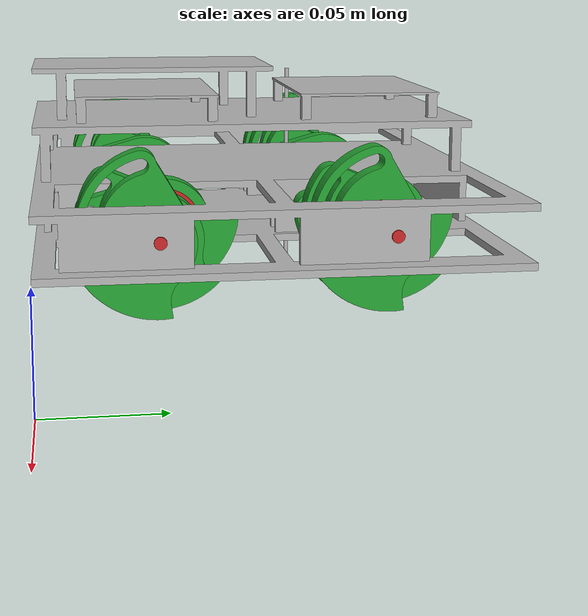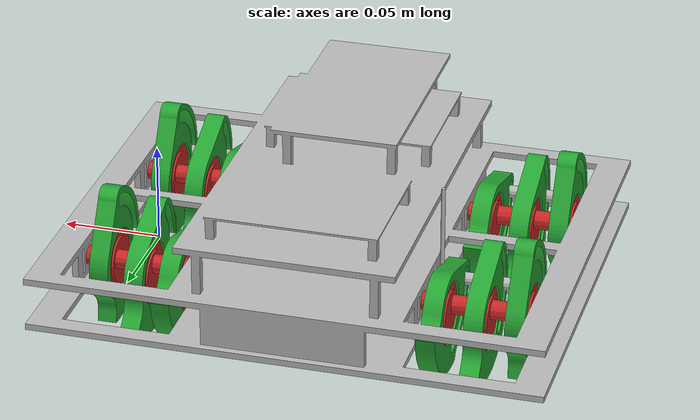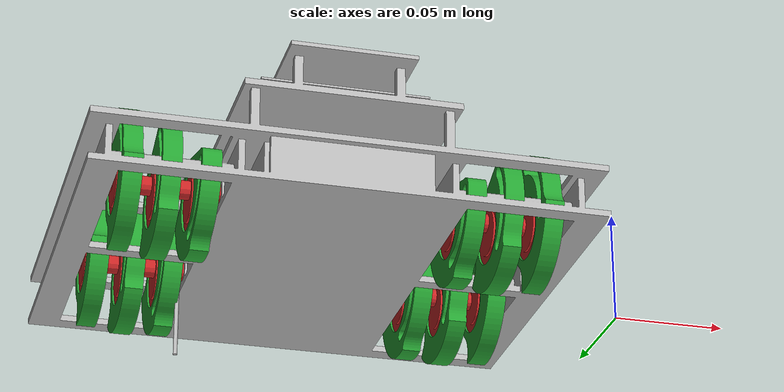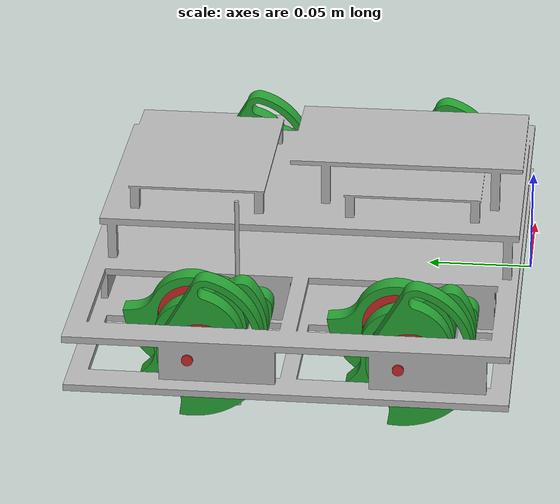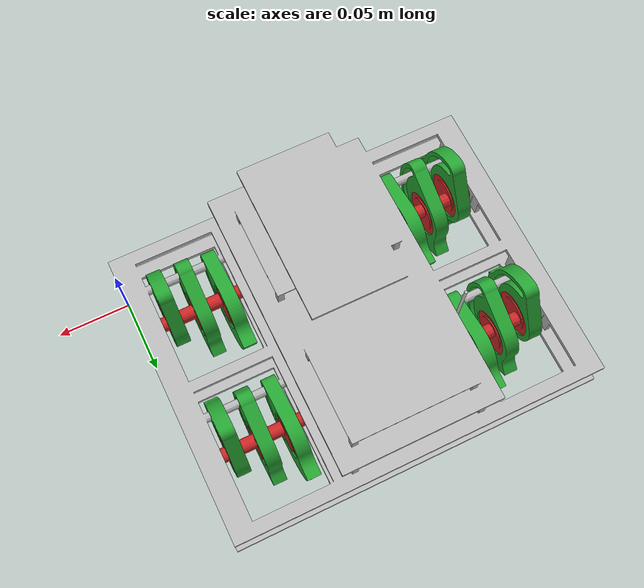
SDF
<sdf version='1.6'>
  <model name='hekken'>
    <link name='base_link'>
      <pose frame=''>0 0 0 0 -0 0</pose>
      <inertial>
        <pose frame=''>-0.12003 0.088573 0.074818 0 -0 0</pose>
        <mass>0.323853</mass>
        <inertia>
          <ixx>0.001101</ixx>
          <ixy>-1.9489e-08</ixy>
          <ixz>-3.2811e-07</ixz>
          <iyy>0.001144</iyy>
          <iyz>-2.903e-05</iyz>
          <izz>0.00195</izz>
        </inertia>
      </inertial>
      <collision name='base_link_fixed_joint_lump__body_link_collision'>
        <pose frame=''>0 0 0.05 0 -0 0</pose>
        <geometry>
          <mesh>
            <scale>1 1 1</scale>
            <uri>model://tokuken_robot_description/models/base/base_blen_low_3.stl</uri>
          </mesh>
        </geometry>
        <surface>
          <contact>
            <ode>
              <min_depth>0.001</min_depth>
            </ode>
          </contact>
          <friction>
            <ode>
              <mu>1</mu>
              <mu2>1</mu2>
            </ode>
          </friction>
        </surface>
      </collision>
      <visual name='base_link_fixed_joint_lump__body_visual'>
        <pose frame=''>0 0 0.05 0 -0 0</pose>
        <geometry>
          <mesh>
            <scale>1 1 1</scale>
            <uri>model://tokuken_robot_description/models/base/base_blen_low_3.stl</uri>
          </mesh>
        </geometry>
      </visual>
      <visual name='base_link_fixed_joint_lump__b_1_mix_link_visual_1'>
        <pose frame=''>-0.1773 0.1225 0.063 0 -0 0</pose>
        <geometry>
          <cylinder>
            <length>0.1</length>
            <radius>0.001</radius>
          </cylinder>
        </geometry>
      </visual>
      <velocity_decay/>
      <gravity>1</gravity>
      <gravity>1</gravity>
      <velocity_decay/>
    </link>
    <link name='a_crank_link'>
      <pose frame=''>-0.0777 0.1375 0.063 0 -0 0</pose>
      <inertial>
        <pose frame=''>0.037341 -0 -0.002966 0 -0 0</pose>
        <mass>0.111155</mass>
        <inertia>
          <ixx>1.696e-05</ixx>
          <ixy>5.13381e-06</ixy>
          <ixz>-4.3631e-08</ixz>
          <iyy>3.475e-05</iyy>
          <iyz>2.165e-05</iyz>
          <izz>3.573e-05</izz>
        </inertia>
      </inertial>
      <collision name='a_crank_link_collision'>
        <pose frame=''>0 0 0 0 -0 0</pose>
        <geometry>
          <mesh>
            <scale>1 1 1</scale>
            <uri>model://tokuken_robot_description/models/base/crank1_lowp_ad_07.stl</uri>
          </mesh>
        </geometry>
        <surface>
          <contact>
            <ode>
              <min_depth>0.001</min_depth>
            </ode>
          </contact>
          <friction>
            <ode>
              <mu>1</mu>
              <mu2>1</mu2>
            </ode>
          </friction>
        </surface>
      </collision>
      <visual name='a_crank_link_visual'>
        <pose frame=''>0 0 0 0 -0 0</pose>
        <geometry>
          <mesh>
            <scale>1 1 1</scale>
            <uri>model://tokuken_robot_description/models/base/crank1_lowp_ad_07.stl</uri>
          </mesh>
        </geometry>
        <material>
          <script>
            <name>Gazebo/Red</name>
            <uri>file://media/materials/scripts/gazebo.material</uri>
          </script>
        </material>
      </visual>
      <gravity>1</gravity>
      <velocity_decay/>
      <gravity>1</gravity>
    </link>
    <joint name='a_crank_joint' type='revolute'>
      <child>a_crank_link</child>
      <parent>base_link</parent>
      <axis>
        <xyz>1 0 0</xyz>
        <limit>
          <lower>-1e+16</lower>
          <upper>1e+16</upper>
        </limit>
        <dynamics>
          <damping>0.1</damping>
          <friction>0</friction>
          <spring_reference>0</spring_reference>
          <spring_stiffness>0</spring_stiffness>
        </dynamics>
        <use_parent_model_frame>1</use_parent_model_frame>
      </axis>
    </joint>
    <link name='a_asi_1_link'>
      <pose frame=''>-0.0627 0.14183 0.0605 0.663225 -0 0</pose>
      <inertial>
        <pose frame=''>0.004485 -0.005639 -0.003777 0 -0 0</pose>
        <mass>0.010706</mass>
        <inertia>
          <ixx>5.40181e-06</ixx>
          <ixy>1.85e-10</ixy>
          <ixz>4.96e-10</ixz>
          <iyy>3.13909e-06</iyy>
          <iyz>-9.8431e-07</iyz>
          <izz>2.41125e-06</izz>
        </inertia>
      </inertial>
      <collision name='a_asi_1_link_collision'>
        <pose frame=''>0 0 0 0 -0 0</pose>
        <geometry>
          <mesh>
            <scale>1 1 1</scale>
            <uri>model://tokuken_robot_description/models/base/asi_1_blen_low_3_ad.stl</uri>
          </mesh>
        </geometry>
        <surface>
          <contact>
            <ode/>
          </contact>
          <friction>
            <ode>
              <mu>1</mu>
              <mu2>1</mu2>
            </ode>
          </friction>
        </surface>
      </collision>
      <visual name='a_asi_1_link_visual'>
        <pose frame=''>0 0 0 0 -0 0</pose>
        <geometry>
          <mesh>
            <scale>1 1 1</scale>
            <uri>model://tokuken_robot_description/models/base/asi_1_blen_low.stl</uri>
          </mesh>
        </geometry>
        <material>
          <script>
            <name>Gazebo/Green</name>
            <uri>file://media/materials/scripts/gazebo.material</uri>
          </script>
        </material>
      </visual>
      <gravity>1</gravity>
      <velocity_decay/>
      <gravity>1</gravity>
    </link>
    <joint name='a_asi_1_joint' type='revolute'>
      <child>a_asi_1_link</child>
      <parent>a_crank_link</parent>
      <axis>
        <xyz>1 0 0</xyz>
        <limit>
          <lower>-1e+16</lower>
          <upper>1e+16</upper>
        </limit>
        <dynamics>
          <spring_reference>0</spring_reference>
          <spring_stiffness>0</spring_stiffness>
        </dynamics>
        <use_parent_model_frame>1</use_parent_model_frame>
      </axis>
    </joint>
    <link name='a_asi_2_link'>
      <pose frame=''>-0.0447 0.1375 0.058 0 -0 0</pose>
      <inertial>
        <pose frame=''>0.004485 -0.005639 -0.003777 0 -0 0</pose>
        <mass>0.010706</mass>
        <inertia>
          <ixx>5.40181e-06</ixx>
          <ixy>1.85e-10</ixy>
          <ixz>4.96e-10</ixz>
          <iyy>3.13909e-06</iyy>
          <iyz>-9.8431e-07</iyz>
          <izz>2.41125e-06</izz>
        </inertia>
      </inertial>
      <collision name='a_asi_2_link_collision'>
        <pose frame=''>0 0 0 0 -0 0</pose>
        <geometry>
          <mesh>
            <scale>1 1 1</scale>
            <uri>model://tokuken_robot_description/models/base/asi_1_blen_low_3_ad.stl</uri>
          </mesh>
        </geometry>
        <surface>
          <contact>
            <ode/>
          </contact>
          <friction>
            <ode>
              <mu>1</mu>
              <mu2>1</mu2>
            </ode>
          </friction>
        </surface>
      </collision>
      <visual name='a_asi_2_link_visual'>
        <pose frame=''>0 0 0 0 -0 0</pose>
        <geometry>
          <mesh>
            <scale>1 1 1</scale>
            <uri>model://tokuken_robot_description/models/base/asi_1_blen_low.stl</uri>
          </mesh>
        </geometry>
        <material>
          <script>
            <name>Gazebo/Green</name>
            <uri>file://media/materials/scripts/gazebo.material</uri>
          </script>
        </material>
      </visual>
      <gravity>1</gravity>
      <velocity_decay/>
      <gravity>1</gravity>
    </link>
    <joint name='a_asi_2_joint' type='revolute'>
      <child>a_asi_2_link</child>
      <parent>a_crank_link</parent>
      <axis>
        <xyz>1 0 0</xyz>
        <limit>
          <lower>-1e+16</lower>
          <upper>1e+16</upper>
        </limit>
        <dynamics>
          <spring_reference>0</spring_reference>
          <spring_stiffness>0</spring_stiffness>
        </dynamics>
        <use_parent_model_frame>1</use_parent_model_frame>
      </axis>
    </joint>
    <link name='a_asi_3_link'>
      <pose frame=''>-0.0267 0.13317 0.0605 -0.645772 0 0</pose>
      <inertial>
        <pose frame=''>0.004485 -0.005639 -0.003777 0 -0 0</pose>
        <mass>0.010706</mass>
        <inertia>
          <ixx>5.40181e-06</ixx>
          <ixy>1.85e-10</ixy>
          <ixz>4.96e-10</ixz>
          <iyy>3.13909e-06</iyy>
          <iyz>-9.8431e-07</iyz>
          <izz>2.41125e-06</izz>
        </inertia>
      </inertial>
      <collision name='a_asi_3_link_collision'>
        <pose frame=''>0 0 0 0 -0 0</pose>
        <geometry>
          <mesh>
            <scale>1 1 1</scale>
            <uri>model://tokuken_robot_description/models/base/asi_1_blen_low_3_ad.stl</uri>
          </mesh>
        </geometry>
        <surface>
          <contact>
            <ode/>
          </contact>
          <friction>
            <ode>
              <mu>1</mu>
              <mu2>1</mu2>
            </ode>
          </friction>
        </surface>
      </collision>
      <visual name='a_asi_3_link_visual'>
        <pose frame=''>0 0 0 0 -0 0</pose>
        <geometry>
          <mesh>
            <scale>1 1 1</scale>
            <uri>model://tokuken_robot_description/models/base/asi_1_blen_low.stl</uri>
          </mesh>
        </geometry>
        <material>
          <script>
            <name>Gazebo/Green</name>
            <uri>file://media/materials/scripts/gazebo.material</uri>
          </script>
        </material>
      </visual>
      <gravity>1</gravity>
      <velocity_decay/>
      <gravity>1</gravity>
    </link>
    <joint name='a_asi_3_joint' type='revolute'>
      <child>a_asi_3_link</child>
      <parent>a_crank_link</parent>
      <axis>
        <xyz>1 0 0</xyz>
        <limit>
          <lower>-1e+16</lower>
          <upper>1e+16</upper>
        </limit>
        <dynamics>
          <spring_reference>0</spring_reference>
          <spring_stiffness>0</spring_stiffness>
        </dynamics>
        <use_parent_model_frame>1</use_parent_model_frame>
      </axis>
    </joint>
    <link name='b_crank_link'>
      <pose frame=''>-0.1623 0.1375 0.063 0 -0 0</pose>
      <inertial>
        <pose frame=''>-0.037341 -0 -0.002966 0 -0 0</pose>
        <mass>0.111155</mass>
        <inertia>
          <ixx>1.696e-05</ixx>
          <ixy>-5.13381e-06</ixy>
          <ixz>4.3631e-08</ixz>
          <iyy>3.475e-05</iyy>
          <iyz>-2.165e-05</iyz>
          <izz>3.573e-05</izz>
        </inertia>
      </inertial>
      <collision name='b_crank_link_collision'>
        <pose frame=''>0 0 0 0 -0 0</pose>
        <geometry>
          <mesh>
            <scale>1 1 1</scale>
            <uri>model://tokuken_robot_description/models/base/crank2_lowp_ad_07.stl</uri>
          </mesh>
        </geometry>
        <surface>
          <contact>
            <ode>
              <min_depth>0.001</min_depth>
            </ode>
          </contact>
          <friction>
            <ode>
              <mu>1</mu>
              <mu2>1</mu2>
            </ode>
          </friction>
        </surface>
      </collision>
      <visual name='b_crank_link_visual'>
        <pose frame=''>0 0 0 0 -0 0</pose>
        <geometry>
          <mesh>
            <scale>1 1 1</scale>
            <uri>model://tokuken_robot_description/models/base/crank2_lowp_ad_07.stl</uri>
          </mesh>
        </geometry>
        <material>
          <script>
            <name>Gazebo/Red</name>
            <uri>file://media/materials/scripts/gazebo.material</uri>
          </script>
        </material>
      </visual>
      <gravity>1</gravity>
      <velocity_decay/>
      <gravity>1</gravity>
    </link>
    <joint name='b_crank_joint' type='revolute'>
      <child>b_crank_link</child>
      <parent>base_link</parent>
      <axis>
        <xyz>1 0 0</xyz>
        <limit>
          <lower>-1e+16</lower>
          <upper>1e+16</upper>
        </limit>
        <dynamics>
          <damping>0.1</damping>
          <friction>0</friction>
          <spring_reference>0</spring_reference>
          <spring_stiffness>0</spring_stiffness>
        </dynamics>
        <use_parent_model_frame>1</use_parent_model_frame>
      </axis>
    </joint>
    <link name='b_asi_1_link'>
      <pose frame=''>-0.1773 0.14183 0.0605 0.663225 -0 0</pose>
      <inertial>
        <pose frame=''>-0.004516 -0.005639 -0.003777 0 -0 0</pose>
        <mass>0.010706</mass>
        <inertia>
          <ixx>5.40181e-06</ixx>
          <ixy>1.85e-10</ixy>
          <ixz>4.96e-10</ixz>
          <iyy>3.13909e-06</iyy>
          <iyz>-9.8431e-07</iyz>
          <izz>2.41125e-06</izz>
        </inertia>
      </inertial>
      <collision name='b_asi_1_link_collision'>
        <pose frame=''>0 0 0 0 -0 0</pose>
        <geometry>
          <mesh>
            <scale>1 1 1</scale>
            <uri>model://tokuken_robot_description/models/base/asi_2_blen_low.stl</uri>
          </mesh>
        </geometry>
        <surface>
          <contact>
            <ode/>
          </contact>
          <friction>
            <ode>
              <mu>1</mu>
              <mu2>1</mu2>
            </ode>
          </friction>
        </surface>
      </collision>
      <visual name='b_asi_1_link_visual'>
        <pose frame=''>0 0 0 0 -0 0</pose>
        <geometry>
          <mesh>
            <scale>1 1 1</scale>
            <uri>model://tokuken_robot_description/models/base/asi_2_blen_low.stl</uri>
          </mesh>
        </geometry>
        <material>
          <script>
            <name>Gazebo/Green</name>
            <uri>file://media/materials/scripts/gazebo.material</uri>
          </script>
        </material>
      </visual>
      <gravity>1</gravity>
      <velocity_decay/>
      <gravity>1</gravity>
    </link>
    <joint name='b_asi_1_joint' type='revolute'>
      <child>b_asi_1_link</child>
      <parent>b_crank_link</parent>
      <axis>
        <xyz>1 0 0</xyz>
        <limit>
          <lower>-1e+16</lower>
          <upper>1e+16</upper>
        </limit>
        <dynamics>
          <spring_reference>0</spring_reference>
          <spring_stiffness>0</spring_stiffness>
        </dynamics>
        <use_parent_model_frame>1</use_parent_model_frame>
      </axis>
    </joint>
    <link name='b_asi_2_link'>
      <pose frame=''>-0.1953 0.1375 0.058 0 -0 0</pose>
      <inertial>
        <pose frame=''>-0.004516 -0.005639 -0.003777 0 -0 0</pose>
        <mass>0.010706</mass>
        <inertia>
          <ixx>5.40181e-06</ixx>
          <ixy>1.85e-10</ixy>
          <ixz>4.96e-10</ixz>
          <iyy>3.13909e-06</iyy>
          <iyz>-9.8431e-07</iyz>
          <izz>2.41125e-06</izz>
        </inertia>
      </inertial>
      <collision name='b_asi_2_link_collision'>
        <pose frame=''>0 0 0 0 -0 0</pose>
        <geometry>
          <mesh>
            <scale>1 1 1</scale>
            <uri>model://tokuken_robot_description/models/base/asi_2_blen_low.stl</uri>
          </mesh>
        </geometry>
        <surface>
          <contact>
            <ode/>
          </contact>
          <friction>
            <ode>
              <mu>1</mu>
              <mu2>1</mu2>
            </ode>
          </friction>
        </surface>
      </collision>
      <visual name='b_asi_2_link_visual'>
        <pose frame=''>0 0 0 0 -0 0</pose>
        <geometry>
          <mesh>
            <scale>1 1 1</scale>
            <uri>model://tokuken_robot_description/models/base/asi_2_blen_low.stl</uri>
          </mesh>
        </geometry>
        <material>
          <script>
            <name>Gazebo/Green</name>
            <uri>file://media/materials/scripts/gazebo.material</uri>
          </script>
        </material>
      </visual>
      <gravity>1</gravity>
      <velocity_decay/>
      <gravity>1</gravity>
    </link>
    <joint name='b_asi_2_joint' type='revolute'>
      <child>b_asi_2_link</child>
      <parent>b_crank_link</parent>
      <axis>
        <xyz>1 0 0</xyz>
        <limit>
          <lower>-1e+16</lower>
          <upper>1e+16</upper>
        </limit>
        <dynamics>
          <spring_reference>0</spring_reference>
          <spring_stiffness>0</spring_stiffness>
        </dynamics>
        <use_parent_model_frame>1</use_parent_model_frame>
      </axis>
    </joint>
    <link name='b_asi_3_link'>
      <pose frame=''>-0.2133 0.13317 0.0605 -0.645772 0 0</pose>
      <inertial>
        <pose frame=''>-0.004516 -0.005639 -0.003777 0 -0 0</pose>
        <mass>0.010706</mass>
        <inertia>
          <ixx>5.40181e-06</ixx>
          <ixy>1.85e-10</ixy>
          <ixz>4.96e-10</ixz>
          <iyy>3.13909e-06</iyy>
          <iyz>-9.8431e-07</iyz>
          <izz>2.41125e-06</izz>
        </inertia>
      </inertial>
      <collision name='b_asi_3_link_collision'>
        <pose frame=''>0 0 0 0 -0 0</pose>
        <geometry>
          <mesh>
            <scale>1 1 1</scale>
            <uri>model://tokuken_robot_description/models/base/asi_2_blen_low.stl</uri>
          </mesh>
        </geometry>
        <surface>
          <contact>
            <ode/>
          </contact>
          <friction>
            <ode>
              <mu>1</mu>
              <mu2>1</mu2>
            </ode>
          </friction>
        </surface>
      </collision>
      <visual name='b_asi_3_link_visual'>
        <pose frame=''>0 0 0 0 -0 0</pose>
        <geometry>
          <mesh>
            <scale>1 1 1</scale>
            <uri>model://tokuken_robot_description/models/base/asi_2_blen_low.stl</uri>
          </mesh>
        </geometry>
        <material>
          <script>
            <name>Gazebo/Green</name>
            <uri>file://media/materials/scripts/gazebo.material</uri>
          </script>
        </material>
      </visual>
      <gravity>1</gravity>
      <velocity_decay/>
      <gravity>1</gravity>
    </link>
    <joint name='b_asi_3_joint' type='revolute'>
      <child>b_asi_3_link</child>
      <parent>b_crank_link</parent>
      <axis>
        <xyz>1 0 0</xyz>
        <limit>
          <lower>-1e+16</lower>
          <upper>1e+16</upper>
        </limit>
        <dynamics>
          <spring_reference>0</spring_reference>
          <spring_stiffness>0</spring_stiffness>
        </dynamics>
        <use_parent_model_frame>1</use_parent_model_frame>
      </axis>
    </joint>
    <link name='c_crank_link'>
      <pose frame=''>-0.1623 0.0475 0.063 0 -0 0</pose>
      <inertial>
        <pose frame=''>-0.037341 -0 -0.002966 0 -0 0</pose>
        <mass>0.111155</mass>
        <inertia>
          <ixx>1.696e-05</ixx>
          <ixy>-5.13381e-06</ixy>
          <ixz>4.3631e-08</ixz>
          <iyy>3.475e-05</iyy>
          <iyz>-2.165e-05</iyz>
          <izz>3.573e-05</izz>
        </inertia>
      </inertial>
      <collision name='c_crank_link_collision'>
        <pose frame=''>0 0 0 0 -0 0</pose>
        <geometry>
          <mesh>
            <scale>1 1 1</scale>
            <uri>model://tokuken_robot_description/models/base/crank2_lowp_ad_07.stl</uri>
          </mesh>
        </geometry>
        <surface>
          <contact>
            <ode>
              <min_depth>0.001</min_depth>
            </ode>
          </contact>
          <friction>
            <ode>
              <mu>1</mu>
              <mu2>1</mu2>
            </ode>
          </friction>
        </surface>
      </collision>
      <visual name='c_crank_link_visual'>
        <pose frame=''>0 0 0 0 -0 0</pose>
        <geometry>
          <mesh>
            <scale>1 1 1</scale>
            <uri>model://tokuken_robot_description/models/base/crank2_lowp_ad_07.stl</uri>
          </mesh>
        </geometry>
        <material>
          <script>
            <name>Gazebo/Red</name>
            <uri>file://media/materials/scripts/gazebo.material</uri>
          </script>
        </material>
      </visual>
      <gravity>1</gravity>
      <velocity_decay/>
      <gravity>1</gravity>
    </link>
    <joint name='c_crank_joint' type='revolute'>
      <child>c_crank_link</child>
      <parent>base_link</parent>
      <axis>
        <xyz>1 0 0</xyz>
        <limit>
          <lower>-1e+16</lower>
          <upper>1e+16</upper>
        </limit>
        <dynamics>
          <damping>0.1</damping>
          <friction>0</friction>
          <spring_reference>0</spring_reference>
          <spring_stiffness>0</spring_stiffness>
        </dynamics>
        <use_parent_model_frame>1</use_parent_model_frame>
      </axis>
    </joint>
    <link name='c_asi_1_link'>
      <pose frame=''>-0.1773 0.05183 0.0605 0.663225 -0 0</pose>
      <inertial>
        <pose frame=''>-0.004516 -0.005639 -0.003777 0 -0 0</pose>
        <mass>0.010706</mass>
        <inertia>
          <ixx>5.40181e-06</ixx>
          <ixy>1.85e-10</ixy>
          <ixz>4.96e-10</ixz>
          <iyy>3.13909e-06</iyy>
          <iyz>-9.8431e-07</iyz>
          <izz>2.41125e-06</izz>
        </inertia>
      </inertial>
      <collision name='c_asi_1_link_collision'>
        <pose frame=''>0 0 0 0 -0 0</pose>
        <geometry>
          <mesh>
            <scale>1 1 1</scale>
            <uri>model://tokuken_robot_description/models/base/asi_2_blen_low.stl</uri>
          </mesh>
        </geometry>
        <surface>
          <contact>
            <ode/>
          </contact>
          <friction>
            <ode>
              <mu>1</mu>
              <mu2>1</mu2>
            </ode>
          </friction>
        </surface>
      </collision>
      <visual name='c_asi_1_link_visual'>
        <pose frame=''>0 0 0 0 -0 0</pose>
        <geometry>
          <mesh>
            <scale>1 1 1</scale>
            <uri>model://tokuken_robot_description/models/base/asi_2_blen_low.stl</uri>
          </mesh>
        </geometry>
        <material>
          <script>
            <name>Gazebo/Green</name>
            <uri>file://media/materials/scripts/gazebo.material</uri>
          </script>
        </material>
      </visual>
      <gravity>1</gravity>
      <velocity_decay/>
      <gravity>1</gravity>
    </link>
    <joint name='c_asi_1_joint' type='revolute'>
      <child>c_asi_1_link</child>
      <parent>c_crank_link</parent>
      <axis>
        <xyz>1 0 0</xyz>
        <limit>
          <lower>-1e+16</lower>
          <upper>1e+16</upper>
        </limit>
        <dynamics>
          <spring_reference>0</spring_reference>
          <spring_stiffness>0</spring_stiffness>
        </dynamics>
        <use_parent_model_frame>1</use_parent_model_frame>
      </axis>
    </joint>
    <link name='c_asi_2_link'>
      <pose frame=''>-0.1953 0.0475 0.058 0 -0 0</pose>
      <inertial>
        <pose frame=''>-0.004516 -0.005639 -0.003777 0 -0 0</pose>
        <mass>0.010706</mass>
        <inertia>
          <ixx>5.40181e-06</ixx>
          <ixy>1.85e-10</ixy>
          <ixz>4.96e-10</ixz>
          <iyy>3.13909e-06</iyy>
          <iyz>-9.8431e-07</iyz>
          <izz>2.41125e-06</izz>
        </inertia>
      </inertial>
      <collision name='c_asi_2_link_collision'>
        <pose frame=''>0 0 0 0 -0 0</pose>
        <geometry>
          <mesh>
            <scale>1 1 1</scale>
            <uri>model://tokuken_robot_description/models/base/asi_2_blen_low.stl</uri>
          </mesh>
        </geometry>
        <surface>
          <contact>
            <ode/>
          </contact>
          <friction>
            <ode>
              <mu>1</mu>
              <mu2>1</mu2>
            </ode>
          </friction>
        </surface>
      </collision>
      <visual name='c_asi_2_link_visual'>
        <pose frame=''>0 0 0 0 -0 0</pose>
        <geometry>
          <mesh>
            <scale>1 1 1</scale>
            <uri>model://tokuken_robot_description/models/base/asi_2_blen_low.stl</uri>
          </mesh>
        </geometry>
        <material>
          <script>
            <name>Gazebo/Green</name>
            <uri>file://media/materials/scripts/gazebo.material</uri>
          </script>
        </material>
      </visual>
      <gravity>1</gravity>
      <velocity_decay/>
      <gravity>1</gravity>
    </link>
    <joint name='c_asi_2_joint' type='revolute'>
      <child>c_asi_2_link</child>
      <parent>c_crank_link</parent>
      <axis>
        <xyz>1 0 0</xyz>
        <limit>
          <lower>-1e+16</lower>
          <upper>1e+16</upper>
        </limit>
        <dynamics>
          <spring_reference>0</spring_reference>
          <spring_stiffness>0</spring_stiffness>
        </dynamics>
        <use_parent_model_frame>1</use_parent_model_frame>
      </axis>
    </joint>
    <link name='c_asi_3_link'>
      <pose frame=''>-0.2133 0.04317 0.0605 -0.645772 0 0</pose>
      <inertial>
        <pose frame=''>-0.004516 -0.005639 -0.003777 0 -0 0</pose>
        <mass>0.010706</mass>
        <inertia>
          <ixx>5.40181e-06</ixx>
          <ixy>1.85e-10</ixy>
          <ixz>4.96e-10</ixz>
          <iyy>3.13909e-06</iyy>
          <iyz>-9.8431e-07</iyz>
          <izz>2.41125e-06</izz>
        </inertia>
      </inertial>
      <collision name='c_asi_3_link_collision'>
        <pose frame=''>0 0 0 0 -0 0</pose>
        <geometry>
          <mesh>
            <scale>1 1 1</scale>
            <uri>model://tokuken_robot_description/models/base/asi_2_blen_low.stl</uri>
          </mesh>
        </geometry>
        <surface>
          <contact>
            <ode/>
          </contact>
          <friction>
            <ode>
              <mu>1</mu>
              <mu2>1</mu2>
            </ode>
          </friction>
        </surface>
      </collision>
      <visual name='c_asi_3_link_visual'>
        <pose frame=''>0 0 0 0 -0 0</pose>
        <geometry>
          <mesh>
            <scale>1 1 1</scale>
            <uri>model://tokuken_robot_description/models/base/asi_2_blen_low.stl</uri>
          </mesh>
        </geometry>
        <material>
          <script>
            <name>Gazebo/Green</name>
            <uri>file://media/materials/scripts/gazebo.material</uri>
          </script>
        </material>
      </visual>
      <gravity>1</gravity>
      <velocity_decay/>
      <gravity>1</gravity>
    </link>
    <joint name='c_asi_3_joint' type='revolute'>
      <child>c_asi_3_link</child>
      <parent>c_crank_link</parent>
      <axis>
        <xyz>1 0 0</xyz>
        <limit>
          <lower>-1e+16</lower>
          <upper>1e+16</upper>
        </limit>
        <dynamics>
          <spring_reference>0</spring_reference>
          <spring_stiffness>0</spring_stiffness>
        </dynamics>
        <use_parent_model_frame>1</use_parent_model_frame>
      </axis>
    </joint>
    <link name='d_crank_link'>
      <pose frame=''>-0.0777 0.0475 0.063 0 -0 0</pose>
      <inertial>
        <pose frame=''>0.037341 -0 -0.002966 0 -0 0</pose>
        <mass>0.111155</mass>
        <inertia>
          <ixx>1.696e-05</ixx>
          <ixy>5.13381e-06</ixy>
          <ixz>-4.3631e-08</ixz>
          <iyy>3.475e-05</iyy>
          <iyz>2.165e-05</iyz>
          <izz>3.573e-05</izz>
        </inertia>
      </inertial>
      <collision name='d_crank_link_collision'>
        <pose frame=''>0 0 0 0 -0 0</pose>
        <geometry>
          <mesh>
            <scale>1 1 1</scale>
            <uri>model://tokuken_robot_description/models/base/crank1_lowp_ad_07.stl</uri>
          </mesh>
        </geometry>
        <surface>
          <contact>
            <ode>
              <min_depth>0.001</min_depth>
            </ode>
          </contact>
          <friction>
            <ode>
              <mu>1</mu>
              <mu2>1</mu2>
            </ode>
          </friction>
        </surface>
      </collision>
      <visual name='d_crank_link_visual'>
        <pose frame=''>0 0 0 0 -0 0</pose>
        <geometry>
          <mesh>
            <scale>1 1 1</scale>
            <uri>model://tokuken_robot_description/models/base/crank1_lowp_ad_07.stl</uri>
          </mesh>
        </geometry>
        <material>
          <script>
            <name>Gazebo/Red</name>
            <uri>file://media/materials/scripts/gazebo.material</uri>
          </script>
        </material>
      </visual>
      <gravity>1</gravity>
      <velocity_decay/>
      <gravity>1</gravity>
    </link>
    <joint name='d_crank_joint' type='revolute'>
      <child>d_crank_link</child>
      <parent>base_link</parent>
      <axis>
        <xyz>1 0 0</xyz>
        <limit>
          <lower>-1e+16</lower>
          <upper>1e+16</upper>
        </limit>
        <dynamics>
          <damping>0.1</damping>
          <friction>0</friction>
          <spring_reference>0</spring_reference>
          <spring_stiffness>0</spring_stiffness>
        </dynamics>
        <use_parent_model_frame>1</use_parent_model_frame>
      </axis>
    </joint>
    <link name='d_asi_1_link'>
      <pose frame=''>-0.0627 0.05183 0.0605 0.663225 -0 0</pose>
      <inertial>
        <pose frame=''>0.004485 -0.005639 -0.003777 0 -0 0</pose>
        <mass>0.010706</mass>
        <inertia>
          <ixx>5.40181e-06</ixx>
          <ixy>1.85e-10</ixy>
          <ixz>4.96e-10</ixz>
          <iyy>3.13909e-06</iyy>
          <iyz>-9.8431e-07</iyz>
          <izz>2.41125e-06</izz>
        </inertia>
      </inertial>
      <collision name='d_asi_1_link_collision'>
        <pose frame=''>0 0 0 0 -0 0</pose>
        <geometry>
          <mesh>
            <scale>1 1 1</scale>
            <uri>model://tokuken_robot_description/models/base/asi_1_blen_low_3_ad.stl</uri>
          </mesh>
        </geometry>
        <surface>
          <contact>
            <ode/>
          </contact>
          <friction>
            <ode>
              <mu>1</mu>
              <mu2>1</mu2>
            </ode>
          </friction>
        </surface>
      </collision>
      <visual name='d_asi_1_link_visual'>
        <pose frame=''>0 0 0 0 -0 0</pose>
        <geometry>
          <mesh>
            <scale>1 1 1</scale>
            <uri>model://tokuken_robot_description/models/base/asi_1_blen_low.stl</uri>
          </mesh>
        </geometry>
        <material>
          <script>
            <name>Gazebo/Green</name>
            <uri>file://media/materials/scripts/gazebo.material</uri>
          </script>
        </material>
      </visual>
      <gravity>1</gravity>
      <velocity_decay/>
      <gravity>1</gravity>
    </link>
    <joint name='d_asi_1_joint' type='revolute'>
      <child>d_asi_1_link</child>
      <parent>d_crank_link</parent>
      <axis>
        <xyz>1 0 0</xyz>
        <limit>
          <lower>-1e+16</lower>
          <upper>1e+16</upper>
        </limit>
        <dynamics>
          <spring_reference>0</spring_reference>
          <spring_stiffness>0</spring_stiffness>
        </dynamics>
        <use_parent_model_frame>1</use_parent_model_frame>
      </axis>
    </joint>
    <link name='d_asi_2_link'>
      <pose frame=''>-0.0447 0.0475 0.058 0 -0 0</pose>
      <inertial>
        <pose frame=''>0.004485 -0.005639 -0.003777 0 -0 0</pose>
        <mass>0.010706</mass>
        <inertia>
          <ixx>5.40181e-06</ixx>
          <ixy>1.85e-10</ixy>
          <ixz>4.96e-10</ixz>
          <iyy>3.13909e-06</iyy>
          <iyz>-9.8431e-07</iyz>
          <izz>2.41125e-06</izz>
        </inertia>
      </inertial>
      <collision name='d_asi_2_link_collision'>
        <pose frame=''>0 0 0 0 -0 0</pose>
        <geometry>
          <mesh>
            <scale>1 1 1</scale>
            <uri>model://tokuken_robot_description/models/base/asi_1_blen_low_3_ad.stl</uri>
          </mesh>
        </geometry>
        <surface>
          <contact>
            <ode/>
          </contact>
          <friction>
            <ode>
              <mu>1</mu>
              <mu2>1</mu2>
            </ode>
          </friction>
        </surface>
      </collision>
      <visual name='d_asi_2_link_visual'>
        <pose frame=''>0 0 0 0 -0 0</pose>
        <geometry>
          <mesh>
            <scale>1 1 1</scale>
            <uri>model://tokuken_robot_description/models/base/asi_1_blen_low.stl</uri>
          </mesh>
        </geometry>
        <material>
          <script>
            <name>Gazebo/Green</name>
            <uri>file://media/materials/scripts/gazebo.material</uri>
          </script>
        </material>
      </visual>
      <gravity>1</gravity>
      <velocity_decay/>
      <gravity>1</gravity>
    </link>
    <joint name='d_asi_2_joint' type='revolute'>
      <child>d_asi_2_link</child>
      <parent>d_crank_link</parent>
      <axis>
        <xyz>1 0 0</xyz>
        <limit>
          <lower>-1e+16</lower>
          <upper>1e+16</upper>
        </limit>
        <dynamics>
          <spring_reference>0</spring_reference>
          <spring_stiffness>0</spring_stiffness>
        </dynamics>
        <use_parent_model_frame>1</use_parent_model_frame>
      </axis>
    </joint>
    <link name='d_asi_3_link'>
      <pose frame=''>-0.0267 0.04317 0.0605 -0.645772 0 0</pose>
      <inertial>
        <pose frame=''>0.004485 -0.005639 -0.003777 0 -0 0</pose>
        <mass>0.010706</mass>
        <inertia>
          <ixx>5.40181e-06</ixx>
          <ixy>1.85e-10</ixy>
          <ixz>4.96e-10</ixz>
          <iyy>3.13909e-06</iyy>
          <iyz>-9.8431e-07</iyz>
          <izz>2.41125e-06</izz>
        </inertia>
      </inertial>
      <collision name='d_asi_3_link_collision'>
        <pose frame=''>0 0 0 0 -0 0</pose>
        <geometry>
          <mesh>
            <scale>1 1 1</scale>
            <uri>model://tokuken_robot_description/models/base/asi_1_blen_low_3_ad.stl</uri>
          </mesh>
        </geometry>
        <surface>
          <contact>
            <ode/>
          </contact>
          <friction>
            <ode>
              <mu>1</mu>
              <mu2>1</mu2>
            </ode>
          </friction>
        </surface>
      </collision>
      <visual name='d_asi_3_link_visual'>
        <pose frame=''>0 0 0 0 -0 0</pose>
        <geometry>
          <mesh>
            <scale>1 1 1</scale>
            <uri>model://tokuken_robot_description/models/base/asi_1_blen_low.stl</uri>
          </mesh>
        </geometry>
        <material>
          <script>
            <name>Gazebo/Green</name>
            <uri>file://media/materials/scripts/gazebo.material</uri>
          </script>
        </material>
      </visual>
      <gravity>1</gravity>
      <velocity_decay/>
      <gravity>1</gravity>
    </link>
    <joint name='d_asi_3_joint' type='revolute'>
      <child>d_asi_3_link</child>
      <parent>d_crank_link</parent>
      <axis>
        <xyz>1 0 0</xyz>
        <limit>
          <lower>-1e+16</lower>
          <upper>1e+16</upper>
        </limit>
        <dynamics>
          <spring_reference>0</spring_reference>
          <spring_stiffness>0</spring_stiffness>
        </dynamics>
        <use_parent_model_frame>1</use_parent_model_frame>
      </axis>
    </joint>
    <joint name='b_asi_1_fix_joint' type='continuous'>
      <pose frame=''>0 0 0 0 -0 0</pose>
      <parent>base_link</parent>
      <child>b_asi_1_secret2_link</child>
    </joint>
    <static>0</static>
    <plugin name='gazebo_ros_control' filename='libgazebo_ros_control.so'>
      <robotNamespace>/hekken</robotNamespace>
      <robotSimType>gazebo_ros_control/DefaultRobotHWSim</robotSimType>
      <legacyModeNS>1</legacyModeNS>
    </plugin>
  </model>
</sdf>
